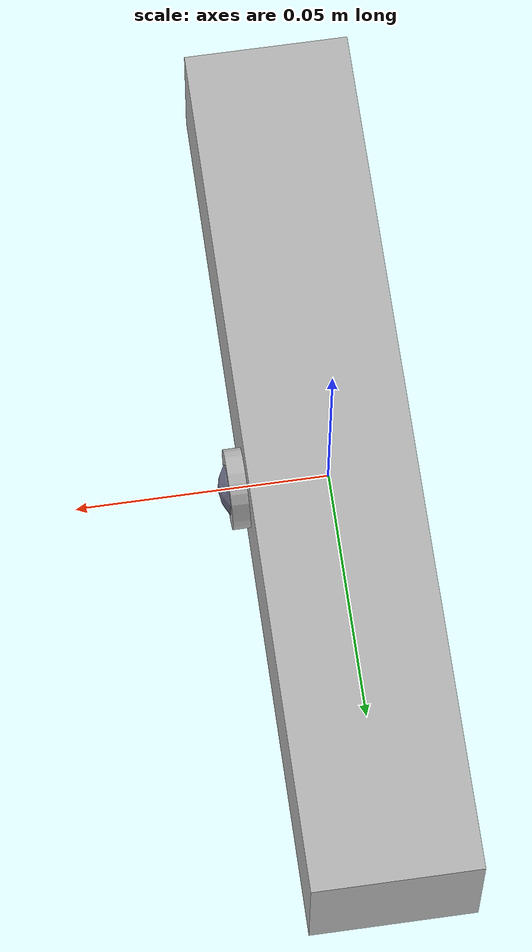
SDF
<?xml version="1.0" encoding="UTF-8"?>
<sdf version='1.9'>
  <model name='better_cam'>
    <pose>0 0 0 0 0 0</pose>
    <self_collide>false</self_collide>
    <static>false</static>
    <link name="camera_link">
      <inertial>
        <pose>0.03 0.03 0.03 0 0 0</pose>
        <mass>0.050</mass>
        <inertia>
          <ixx>0.00004</ixx>
          <ixy>0</ixy>
          <ixz>0</ixz>
          <iyy>0.00004</iyy>
          <iyz>0</iyz>
          <izz>0.00004</izz>
        </inertia>
      </inertial>
      <visual name="mono_cam/visual/housing">
        <geometry>
          <box>
            <size>0.033 0.175 0.03</size>
          </box>
        </geometry>
      </visual>
      <visual name="mono_cam/visual/lens">
        <pose>0.015 0 0 0 1.5707 0</pose>
        <geometry>
          <cylinder>
            <radius>0.008</radius>
            <length>0.01</length>
          </cylinder>
        </geometry>
      </visual>
      <visual name="mono_cam/visual/lens_glass">
        <pose>0.014 0 0 0 0 0</pose>
        <geometry>
          <sphere>
            <radius>0.0079</radius>
          </sphere>
        </geometry>
        <material>
          <ambient>.4 .4 .5 .95</ambient>
          <diffuse>.4 .4 .5 .95</diffuse>
          <specular>1 1 1 1</specular>
          <emissive>0 0 0 1</emissive>
        </material>
      </visual>

      <sensor name="camera" type="rgbd_camera">
        <gz_frame_id>camera_link</gz_frame_id>
        <pose>0 0 0 0 0 0</pose>
        <camera>
          <!-- ZED X HFOV: 110° = 1.92 rad (actual)
               Using 105° = 1.83 rad to approximate with neural depth -->
          <horizontal_fov>1.83</horizontal_fov>
          <image>
            <!-- ZED X HD mode: 1280x720; using 672x376 for sim perf -->
            <width>672</width>
            <height>376</height>
            <format>R8G8B8</format>
          </image>
          <clip>
            <near>0.3</near>
            <far>20.0</far>
          </clip>
          <depth_camera>
            <clip>
              <near>0.3</near>
              <far>20.0</far>
            </clip>
          </depth_camera>
          <noise>
            <type>gaussian</type>
            <mean>0.0</mean>
            <stddev>0.007</stddev>
          </noise>
        </camera>
        <always_on>1</always_on>
        <update_rate>15</update_rate>
        <visualize>true</visualize>
      </sensor>

      <gravity>true</gravity>
      <velocity_decay />
    </link>
  </model>
</sdf>
